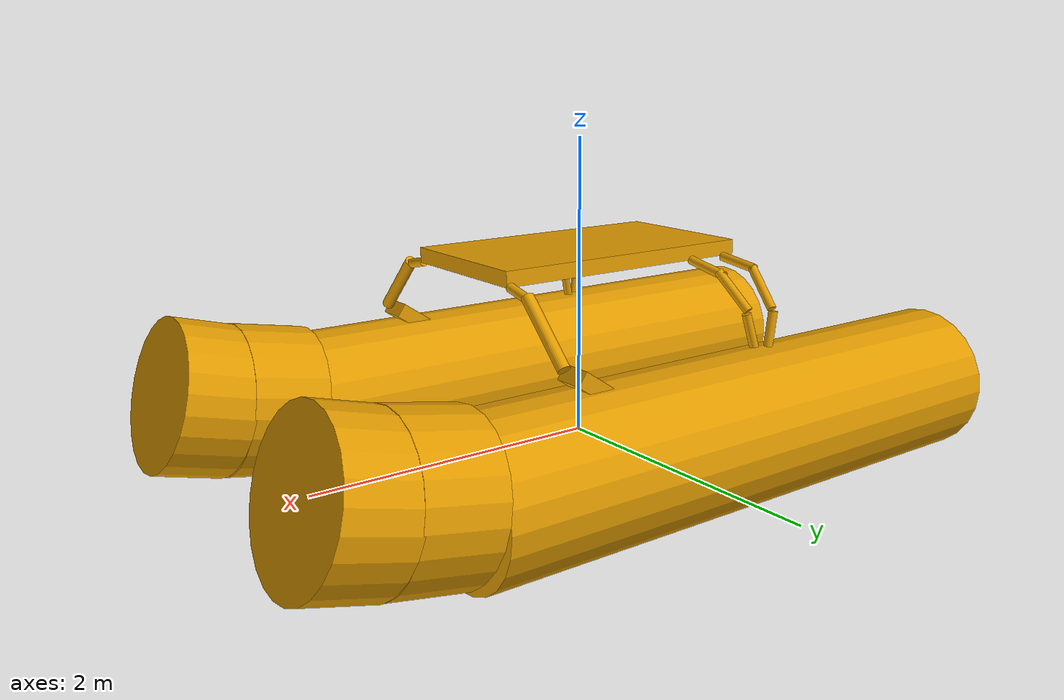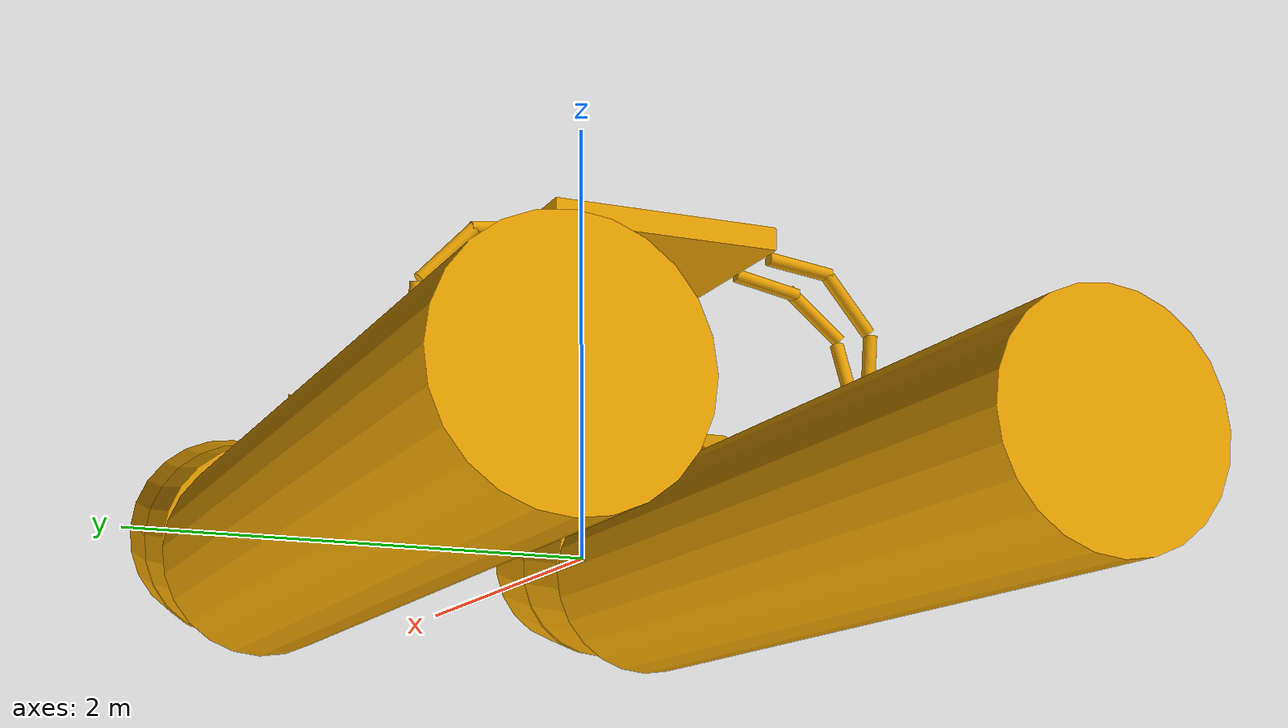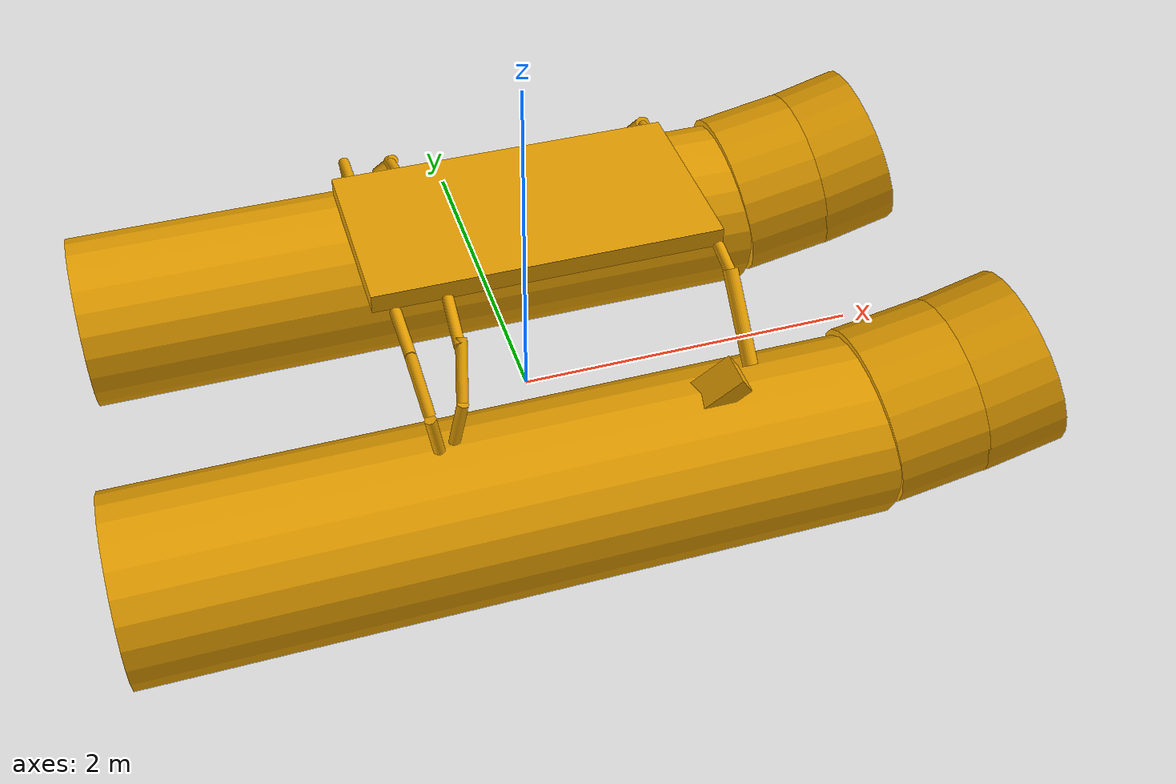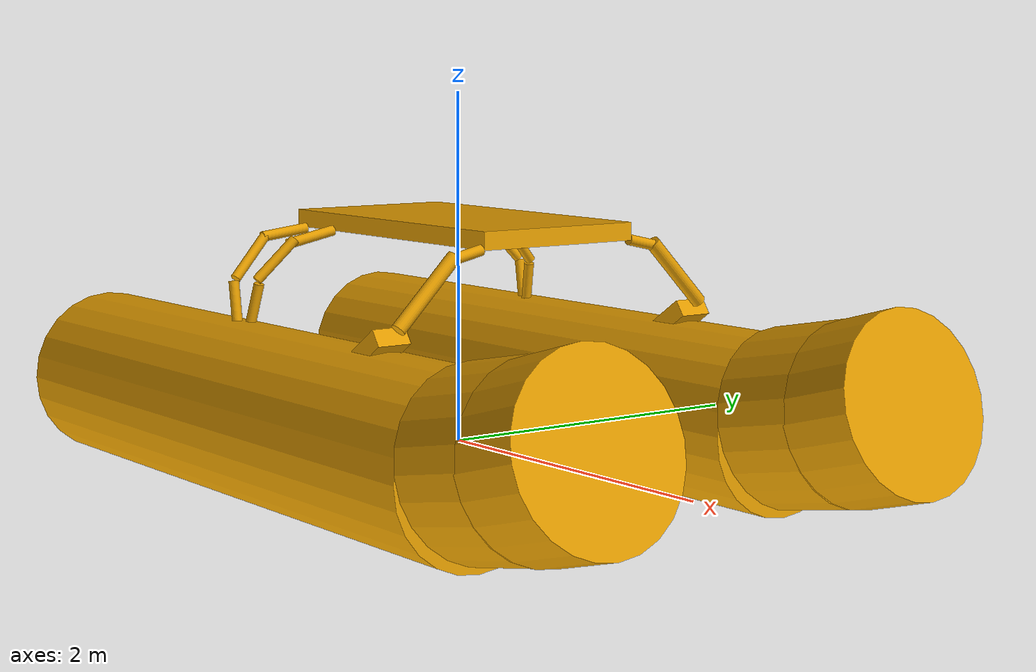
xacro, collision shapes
<?xml version="1.0"?>
<robot xmlns:xacro="http://ros.org/wiki/xacro" name="wam-v">
  <!-- Required arg for melodic and kinetic... -->
  <xacro:arg name="namespace" default="wamv"/>
  <!-- session_manager overrides（full_config robot_*.overrides） -->
  <xacro:arg name="mass" default="1900.0"/>
  <xacro:arg name="ixx" default="1200"/>
  <xacro:arg name="iyy" default="4000"/>
  <xacro:arg name="izz" default="4500"/>
  <xacro:arg name="visual_mesh" default="package://vrx_gz/models/body-Base/mesh/M5_body.dae"/>
  <xacro:property name="namespace" value="$(arg namespace)" scope="global" />
  <!-- Macro for creating the main collisions as simple shapes. -->
  <xacro:macro name="main_collisions" params="prefix reflect:=1">
    <!-- Main float -->
    <collision name="${prefix}_float">
      <origin xyz="-0.4 ${1.03*reflect} 0.2" rpy="${0*reflect} 1.57 0" />
      <geometry>
        <cylinder length="4" radius="0.5" />
      </geometry>
    </collision>

    <collision name="${prefix}_mid_float">
      <origin xyz="1.85 ${1.03*reflect} 0.3" rpy="${0*reflect} 1.38 0" />
      <geometry>
        <cylinder length="0.5" radius="0.5" />
      </geometry>
    </collision>
    <collision name="${prefix}_front_float">
      <origin xyz="2.3 ${1.03*reflect} 0.4" rpy="${0*reflect} 1.3 0" />
      <geometry>
        <cylinder length="0.45" radius="0.5" />
      </geometry>
    </collision>

    <!-- Front beam -->
    <collision name="front_${prefix}_beam_lower">
      <origin xyz="0.9 ${0.85*reflect} 1" rpy="${0.78*reflect} 0 0" />
      <geometry>
        <cylinder length="0.5" radius="0.04" />
      </geometry>
    </collision>

    <collision name="front_${prefix}_beam_upper">
      <origin xyz="0.9 ${0.6*reflect} 1.18" rpy="${1.35*reflect} 0 0" />
      <geometry>
        <cylinder length="0.2" radius="0.03" />
      </geometry>
    </collision>

    <!-- Mid beam -->
    <collision name="mid_${prefix}_beam_lower">
      <origin xyz="-0.65 ${0.99*reflect} 0.7" rpy="${0.1*reflect} 0.25 0" />
      <geometry>
        <cylinder length="0.45" radius="0.03" />
      </geometry>
    </collision>

    <collision name="mid_${prefix}_beam_medium">
      <origin xyz="-0.57 ${0.87*reflect} 1.05" rpy="${0.75*reflect} 0.25 0" />
      <geometry>
        <cylinder length="0.32" radius="0.03" />
      </geometry>
    </collision>

    <collision name="mid_${prefix}_beam_upper">
      <origin xyz="-0.55 ${0.65*reflect} 1.17" rpy="${1.35*reflect} 0.25 0" />
      <geometry>
        <cylinder length="0.3" radius="0.03" />
      </geometry>
    </collision>

    <!-- Rear beam -->
    <collision name="rear_${prefix}_beam_lower">
      <origin xyz="-0.74 ${1.03*reflect} 0.7" rpy="${0*reflect} -0.15 0" />
      <geometry>
        <cylinder length="0.45" radius="0.03" />
      </geometry>
    </collision>

    <collision name="rear_${prefix}_beam_medium">
      <origin xyz="-0.79 ${0.91*reflect} 1.05" rpy="${0.75*reflect} -0.15 0" />
      <geometry>
        <cylinder length="0.32" radius="0.03" />
      </geometry>
    </collision>

    <collision name="rear_${prefix}_beam_upper">
      <origin xyz="-0.81 ${0.67*reflect} 1.18" rpy="${1.45*reflect} -0.15 0" />
      <geometry>
        <cylinder length="0.3" radius="0.03" />
      </geometry>
    </collision>

    <!-- Joint -->
    <collision name="${prefix}_joint">
      <origin xyz="0.58 ${1.03*reflect} 0.6" rpy="${0*reflect} -0.6 0" />
      <geometry>
        <box size="0.65 0.2 0.1" />
      </geometry>
    </collision>
  </xacro:macro>

  <!-- Basic model of the 16' WAM-V USV -->
  <!-- KDL 要求根 link 无 inertial；惯性放在子 link，Gazebo lumping 后仍保留 base_link 名称 -->
  <link name="${namespace}/base_link">
    <visual>
      <geometry>
        <mesh filename="$(arg visual_mesh)"/>
      </geometry>
    </visual>
<!-- src/my_wamv/blade_R.dae -->
    <!-- Left base collisions -->
    <xacro:main_collisions prefix="left" reflect="1" />

    <!-- Right side collisions -->
    <xacro:main_collisions prefix="right" reflect="-1" />

     <!-- Top base -->
    <collision name="top_base">
      <origin xyz="0 -0 1.25" rpy="0 0 0" />
      <geometry>
        <box size="1.85 1 0.1" />
      </geometry>
    </collision>
  </link>

  <joint name="${namespace}/base_footprint_joint" type="fixed">
    <parent link="${namespace}/base_link"/>
    <child link="${namespace}/base_footprint"/>
    <origin xyz="0 0 0" rpy="0 0 0"/>
  </joint>

  <link name="${namespace}/base_footprint">
    <inertial>
      <!-- From WAM-V spec sheet; mass/ixx/iyy/izz 可由 full_config overrides 覆盖 -->
      <mass value="$(arg mass)"/>
      <origin xyz="0 0 -0.2" rpy="0 0 0"/>
      <!-- 惯性张量根据 1.9 吨、5m长、2.5m宽估算 -->
      <inertia ixx="$(arg ixx)" ixy="0" ixz="0" iyy="$(arg iyy)" iyz="0" izz="$(arg izz)"/>
    </inertial>
  </link>

  <gazebo>
    <enable_wind>true</enable_wind>
  </gazebo>

  <gazebo reference="${namespace}/base_link">
    <visual>
      <material>
        <!-- 使用您想要的纯色通道，格式为 Red Green Blue Alpha (0~1之间) -->
        <!-- 下面这个例子是开启大红色 -->
        <ambient>0.4 0.4 0.4 1.0</ambient>
        <diffuse>0.5 0.5 0.5 1.0</diffuse>
        <specular>0.1 0.1 0.1 1.0</specular>
        <emissive>0.0 0.0 0.0 1.0</emissive>

        <!-- PBR贴图部分注释掉 -->
      </material>
    </visual>

    <sensor type="contact" name="contact_sensor">
      <contact>
        <!-- collisions are renamed during urdf -> sdf fixed joint lumping -->
        <collision>${namespace}/base_link_fixed_joint_lump__top_base_collision_24</collision>
        <collision>${namespace}/base_link_fixed_joint_lump__left_float_collision</collision>
        <collision>${namespace}/base_link_fixed_joint_lump__left_mid_float_collision_1</collision>
        <collision>${namespace}/base_link_fixed_joint_lump__left_front_float_collision_2</collision>
        <collision>${namespace}/base_link_fixed_joint_lump__right_float_collision_12</collision>
        <collision>${namespace}/base_link_fixed_joint_lump__right_mid_float_collision_13</collision>
        <collision>${namespace}/base_link_fixed_joint_lump__right_front_float_collision_14</collision>
        <topic>/vrx/contacts</topic>
      </contact>
      <always_on>1</always_on>
      <update_rate>5</update_rate>
    </sensor>
  </gazebo>

</robot>
